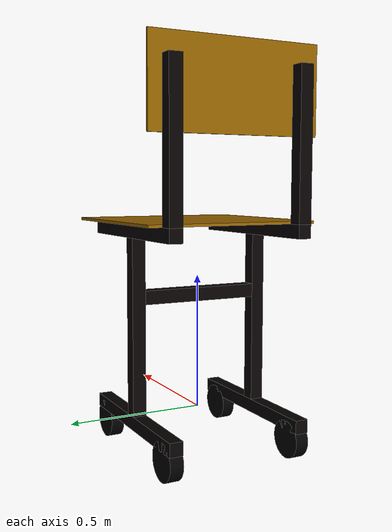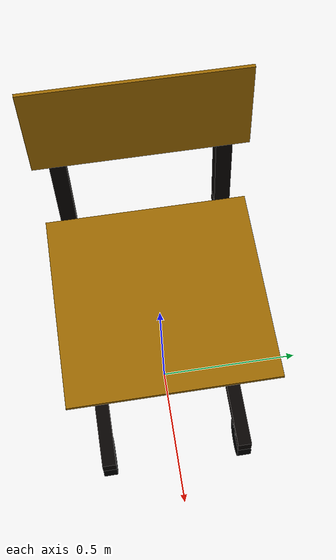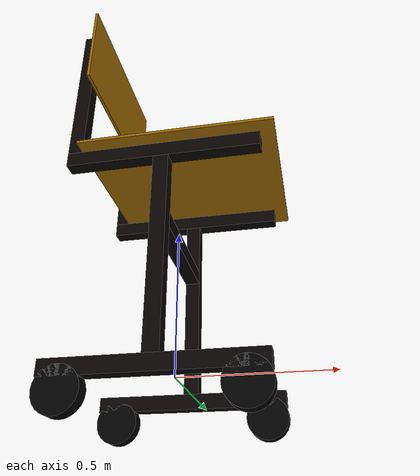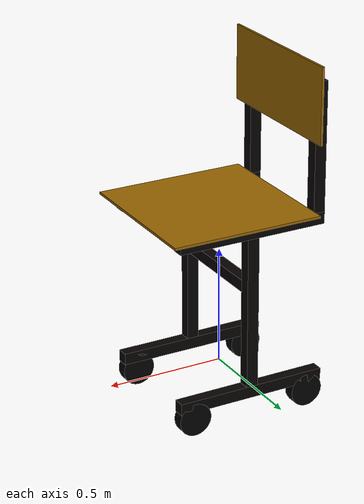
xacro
<?xml version="1.0"?>
<robot xmlns:xacro="http://www.ros.org/wiki/xacro" name="robot">
    <xacro:include filename="$(find robot_description)/urdf/gazebo.urdf.xacro" />

<material name="brown">
  <color rgba="0.02 0.005 0 1"/>
</material>
<material name="yellow">
  <color rgba="0.6 0.4 0 1"/>
</material>
<material name="black">
  <color rgba="0 0 0 1"/>
</material>

<xacro:property name="base_width" value="0.45" />
<xacro:property name="block_thickness" value="0.05"/>
<xacro:property name="height" value="0.65"/>
<xacro:property name="leg_length" value="0.65"/>
<xacro:property name="backrest_mount_height" value="0.55"/>
<xacro:property name="board_w" value="0.65"/>
<xacro:property name="board_t" value="0.01"/>
<xacro:property name="wheel_radius" value="0.07"/>
<xacro:property name="wheel_thickness" value="0.05"/>
<xacro:property name="wheel_mass" value="0.5"/>
<link name="base_link">
</link>

<link name="base_footprint">
</link>

<joint name="base_footprint_joint" type="fixed">
  <parent link="base_link"/>
  <child link="base_footprint"/>
  <origin xyz="0 0 -${2 * wheel_radius + block_thickness}" rpy="0 0 0"/>
</joint>

<xacro:macro name="side" params="prefix reflect m">
  <link name="${prefix}_side">
      <visual>
          <geometry>
            <box size="${block_thickness} ${block_thickness} ${height}"/>
          </geometry>
          <origin xyz="0 0 ${-height / 6}"/>
          <material name="brown"/>
      </visual>
    <collision>
      <geometry>
        <box size="${block_thickness} ${block_thickness} ${height}"/>
      </geometry>
      <origin xyz="0 0 ${-height / 6}"/>
    </collision>
    <inertial>
      <mass value="${m}"/>
      <inertia ixx="${m / 12 * (height * height + block_thickness * block_thickness)}" ixy="0.0"
      ixz="0.0" iyy="${m / 12 * (height * height + block_thickness * block_thickness)}" iyz="0.0"
      izz="${m / 12 * 2 * block_thickness * block_thickness}"/>
      <origin xyz="0 0 ${-height / 6}"/>
    </inertial>
  </link>
  <joint name="legging_to_${prefix}_side" type="fixed">
    <parent link="legging"/>
    <child link="${prefix}_side"/>
    <origin xyz="0 ${reflect * (base_width + block_thickness) / 2} 0"/>
  </joint>
</xacro:macro>

<xacro:macro name="leg" params="prefix reflect m">
  <link name="${prefix}_leg">
    <visual>
      <geometry>
        <box size="${leg_length} ${block_thickness} ${block_thickness}"/>
      </geometry>
        <origin xyz="0 0 ${-block_thickness / 2}"/>
        <material name="brown"/>
    </visual>
    <collision>
      <geometry>
        <box size="${leg_length} ${block_thickness} ${block_thickness}"/>
      </geometry>
      <origin xyz="0 0 ${-block_thickness / 2}"/>
    </collision>
    <inertial>
      <mass value="${m}"/>
      <inertia ixx="${m / 12 * 2 * block_thickness * block_thickness}" ixy="0.0"
      ixz="0.0" iyy="${m / 12 * (leg_length * leg_length + block_thickness * block_thickness)}" iyz="0.0"
      izz="${m / 12 * (leg_length * leg_length + block_thickness * block_thickness)}"/>
      <origin xyz="0 0 ${-block_thickness / 2}"/>
    </inertial>
  </link>
  <joint name="${prefix}_side_to_${prefix}_leg" type="fixed">
    <parent link="${prefix}_side"/>
    <child link="${prefix}_leg"/>
    <origin xyz="0 0 ${-8 * height / 12}"/>
  </joint>
</xacro:macro>

<xacro:macro name="seat_mount" params="prefix reflect m">
  <link name="${prefix}_seat_mount">
    <visual>
      <geometry>
        <box size="${leg_length} ${block_thickness} ${block_thickness}"/>
      </geometry>
      <origin xyz="0 0 ${block_thickness / 2}"/>
      <material name="brown"/>
    </visual>
    <collision>
      <geometry>
        <box size="${leg_length} ${block_thickness} ${block_thickness}"/>
      </geometry>
      <origin xyz="0 0 ${block_thickness / 2}"/>
    </collision>
    <inertial>
      <mass value="${m}"/>
      <inertia ixx="${m / 12 * 2 * block_thickness * block_thickness}" ixy="0.0"
      ixz="0.0" iyy="${m / 12 * (leg_length * leg_length + block_thickness * block_thickness)}" iyz="0.0"
      izz="${m / 12 * (leg_length * leg_length + block_thickness * block_thickness)}"/>
      <origin xyz="0 0 ${block_thickness / 2}"/>
    </inertial>
  </link>
  <joint name="${prefix}_side_to_${prefix}_seat_mount" type="fixed">
    <parent link="${prefix}_side"/>
    <child link="${prefix}_seat_mount"/>
    <origin xyz="0 0 ${height / 3}"/>
  </joint>
</xacro:macro>

<xacro:macro name="backrest_mount" params="prefix reflect m">
  <link name="${prefix}_backrest_mount">
      <visual>
          <geometry>
            <box size="${block_thickness} ${block_thickness} ${backrest_mount_height}"/>
          </geometry>
          <origin xyz="0 0 ${backrest_mount_height / 2}"/>
          <material name="brown"/>
      </visual>
    <collision>
      <geometry>
        <box size="${block_thickness} ${block_thickness} ${backrest_mount_height}"/>
      </geometry>
      <origin xyz="0 0 ${backrest_mount_height / 2}"/>
    </collision>
    <inertial>
      <mass value="${m}"/>
      <inertia ixx="${m / 12 * (block_thickness * block_thickness + backrest_mount_height * backrest_mount_height)}" ixy="0.0"
      ixz="0.0" iyy="${m / 12 * (backrest_mount_height * backrest_mount_height + block_thickness * block_thickness)}" iyz="0.0"
      izz="${m / 12 * 2 * block_thickness * block_thickness}"/>
      <origin xyz="0 0 ${backrest_mount_height / 2}"/>
    </inertial>
  </link>
  <joint name="${prefix}_backrest_mount_to_${prefix}_seat_mount" type="fixed">
    <parent link="${prefix}_seat_mount"/>
    <child link="${prefix}_backrest_mount"/>
    <origin xyz="${-(leg_length - block_thickness) / 2} 0 ${block_thickness}"/>
  </joint>
</xacro:macro>

<xacro:macro name="wheel" params="prefix prefix2 reflect reflect2">
  <link name="${prefix}_${prefix2}_wheel">
    <visual>
      <geometry>
        <cylinder length="${wheel_thickness}" radius="${wheel_radius}"/>
      </geometry>
      <material name="black"/>
    </visual>
    <collision>
      <geometry>
        <sphere radius="${wheel_radius}"/>
      </geometry>
    </collision>
    <inertial>
      <mass value="${wheel_mass}" />
      <inertia ixx="${(1/12) * wheel_mass * (3*wheel_radius*wheel_radius + wheel_thickness*wheel_thickness)}" ixy="0.0" ixz="0.0"
                iyy="${(1/12) * wheel_mass * (3*wheel_radius*wheel_radius + wheel_thickness*wheel_thickness)}" iyz="0.0"
                izz="${(1/2) * wheel_mass * (wheel_radius*wheel_radius)}" />
    </inertial>
  </link>
  <joint name="${prefix}_${prefix2}_wheel_joint" type="continuous">
    <parent link="base_link"/>
    <child link="${prefix}_${prefix2}_wheel"/>
    <axis xyz="0 0 ${reflect2}"/>
    <origin xyz="${reflect * 0.4 * leg_length} ${reflect2 * (base_width + block_thickness) / 2} ${-block_thickness - 0.035}"
    rpy="${-reflect2 * pi/2} 0 0"/>
  </joint>

</xacro:macro>

<xacro:macro name="legging" params="m">
<link name="legging">
  <visual>
    <geometry>
      <box size="${block_thickness} ${base_width} ${block_thickness}"/>
    </geometry>
    <material name="brown"/>
  </visual>
  <collision>
    <geometry>
      <box size="${block_thickness} ${base_width} ${block_thickness}"/>
    </geometry>
  </collision>
  <inertial>
    <mass value="${m}"/>
    <inertia ixx="${m / 12 * (base_width * base_width + block_thickness * block_thickness)}" ixy="0.0"
    ixz="0.0" iyy="${m / 12 * (2 * block_thickness * block_thickness)}" iyz="0.0"
    izz="${m / 12 * (base_width * base_width + block_thickness * block_thickness)}"/>
  </inertial>
</link>

<joint name="base_link_to_legging" type="fixed">
  <parent link="base_link"/>
  <child link="legging"/>
  <origin xyz="0 0 ${8 * height / 12}"/>
</joint>

</xacro:macro>

<xacro:macro name="seat" params="m">
<link name="seat">
  <visual>
    <geometry>
      <box size="${leg_length} ${board_w} ${board_t}"/>
    </geometry>
    <origin xyz="${block_thickness} 0 0"/>
    <material name="yellow"/>
  </visual>
  <collision>
    <geometry>
      <box size="${leg_length} ${board_w} ${board_t}"/>
    </geometry>
    <origin xyz="${block_thickness} 0 0"/>
  </collision>
  <inertial>
    <mass value="${m}"/>
    <inertia ixx="${m / 12 * (board_w * board_w + board_t * board_t)}" ixy="0.0"
    ixz="0.0" iyy="${m / 12 * (leg_length * leg_length + board_t * board_t)}" iyz="0.0"
    izz="${m / 12 * (board_w * board_w + leg_length * leg_length)}"/>
    <origin xyz="${block_thickness} 0 0"/>
  </inertial>
</link>
<joint name="legging_to_seat" type="fixed">
  <parent link="legging"/>
  <child link="seat"/>
  <origin xyz="0 0 ${height / 3 + block_thickness + board_t / 2}"/>
</joint>
</xacro:macro>

<xacro:macro name="backrest" params="m">
<link name="backrest">
  <visual>
    <geometry>
      <box size="${board_t} ${board_w} ${7 * backrest_mount_height / 12}"/>
    </geometry>
    <material name="yellow"/>
  </visual>
  <collision>
    <geometry>
      <box size="${board_t} ${board_w} ${7 * backrest_mount_height / 12}"/>
    </geometry>
  </collision>
  <inertial>
    <mass value="${m}"/>
    <inertia ixx="${m / 12 * (board_w * board_w + 49 * backrest_mount_height * backrest_mount_height / 144)}" ixy="0.0"
    ixz="0.0" iyy="${m / 12 * (49 * backrest_mount_height * backrest_mount_height / 144 + board_t * board_t)}" iyz="0.0"
    izz="${m / 12 * (board_w * board_w + board_t * board_t)}"/>
  </inertial>
</link>
<joint name="legging_to_backrest" type="fixed">
  <parent link="legging"/>
  <child link="backrest"/>
  <origin xyz="-${(leg_length - board_t) / 2 - block_thickness} 0 ${height / 3 + 1.5 * block_thickness + 0.8 * backrest_mount_height}"/>
</joint>
</xacro:macro>

<xacro:legging m="0.1"/>

<xacro:side prefix="right" reflect="1" m="0.5"/>
<xacro:side prefix="left" reflect="-1" m="0.5"/>
<xacro:leg prefix="right" reflect="1" m="0.5"/>
<xacro:leg prefix="left" reflect="-1" m="0.5"/>
<xacro:seat_mount prefix="right" reflect="1" m="0.1"/>
<xacro:seat_mount prefix="left" reflect="-1" m="0.1"/>
<xacro:backrest_mount prefix="right" reflect="1" m="0.1"/>
<xacro:backrest_mount prefix="left" reflect="-1" m="0.1"/>

<xacro:seat m="0.01"/>
<xacro:backrest m="0.01"/>

<xacro:wheel prefix="front" prefix2="right" reflect="1" reflect2="-1"/>
<xacro:wheel prefix="rear" prefix2="right" reflect="-1" reflect2="-1"/>
<xacro:wheel prefix="front" prefix2="left" reflect="1" reflect2="1"/>
<xacro:wheel prefix="rear" prefix2="left" reflect="-1" reflect2="1"/>
</robot>
